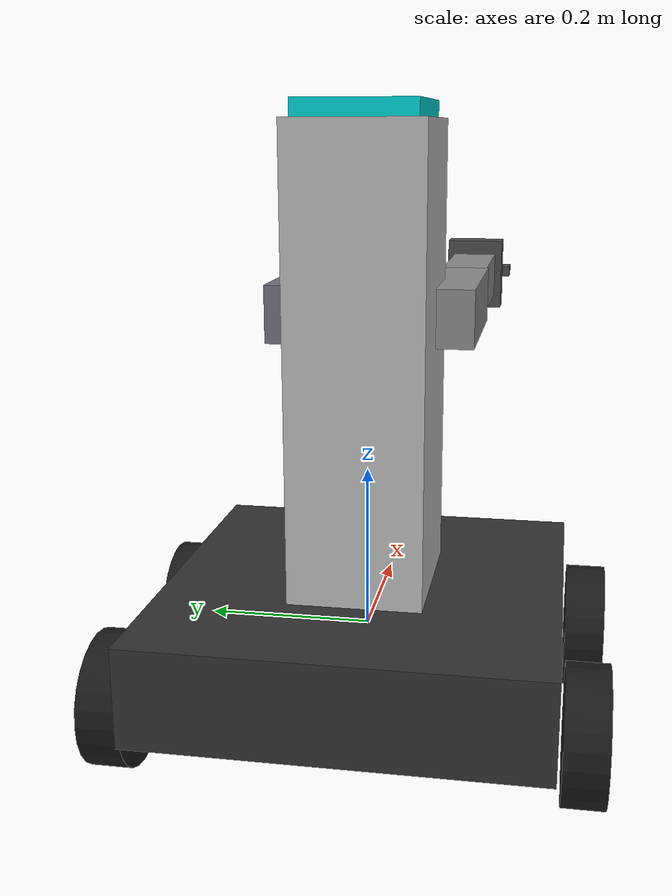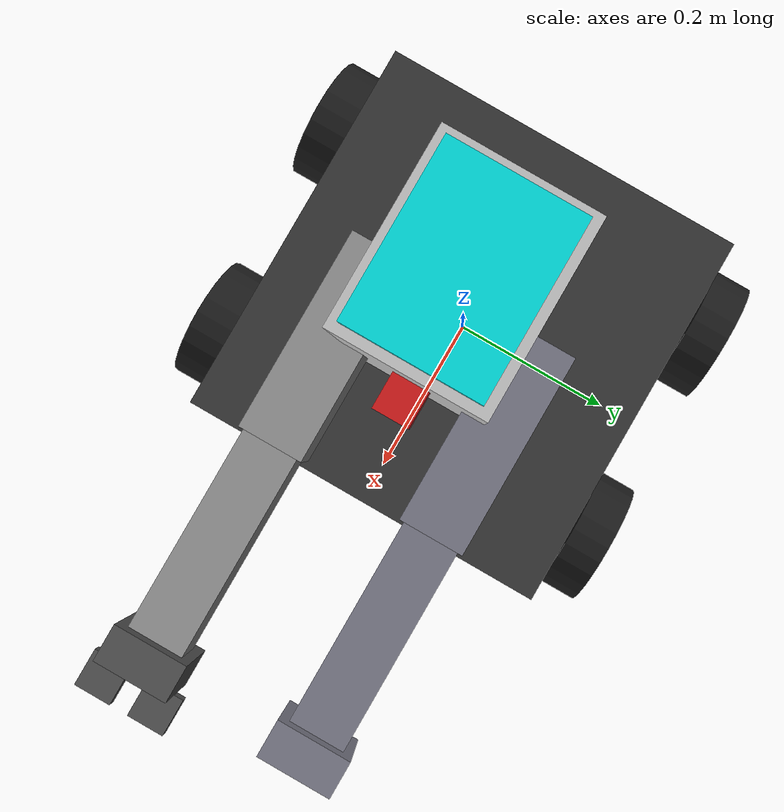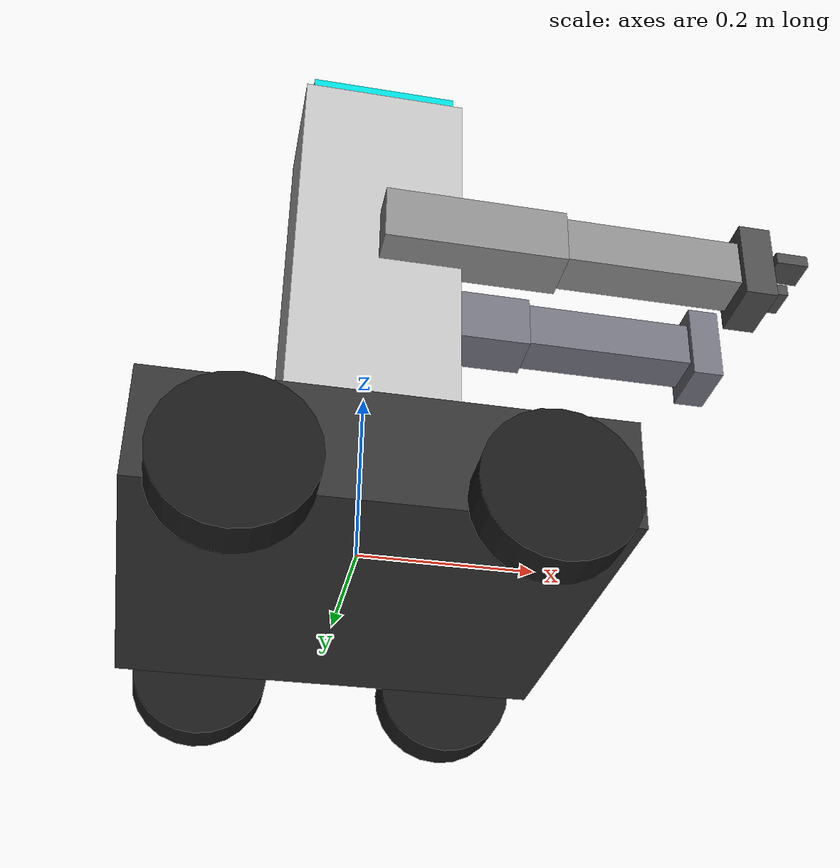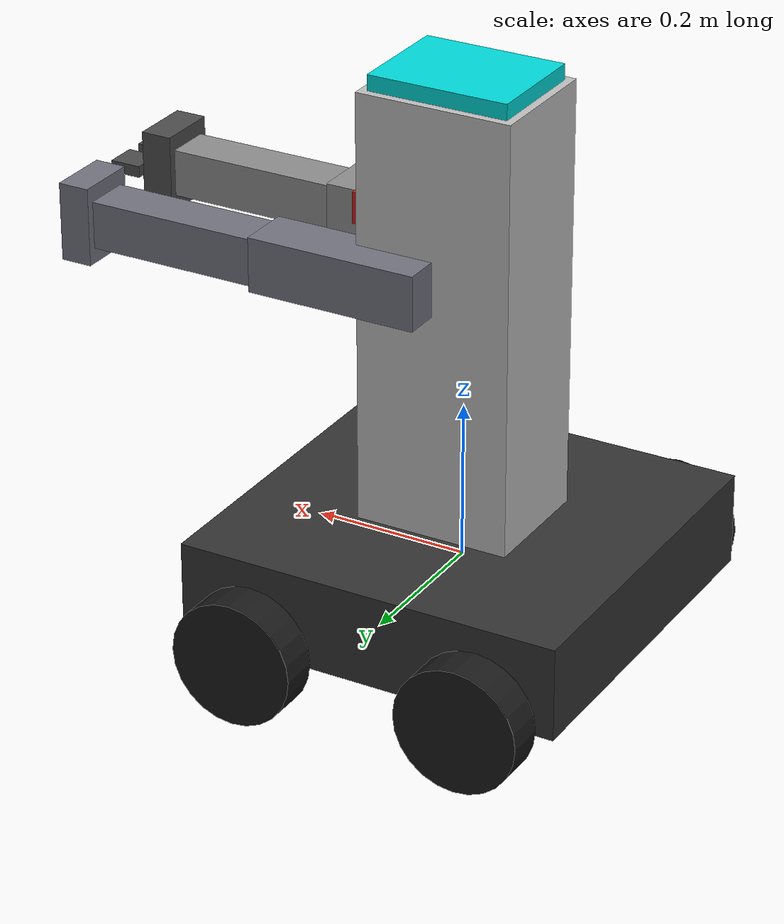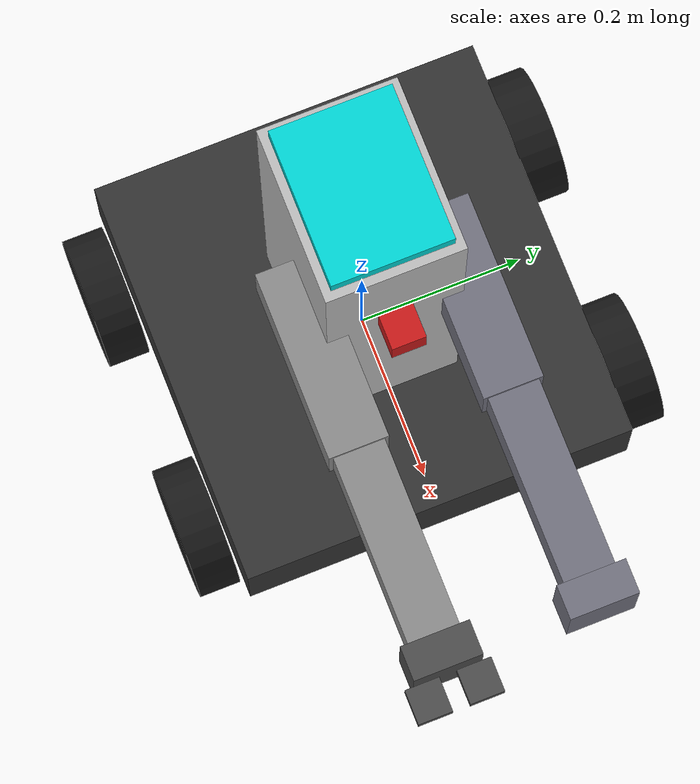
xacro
<?xml version="1.0"?>
<robot xmlns:xacro="http://www.ros.org/wiki/xacro" name="tidybot">

  <xacro:macro name="inertia_box" params="m x y z">
    <inertial>
      <mass value="${m}"/>
      <inertia
        ixx="${m/12.0 * (y*y + z*z)}"
        iyy="${m/12.0 * (x*x + z*z)}"
        izz="${m/12.0 * (x*x + y*y)}"
        ixy="0" ixz="0" iyz="0"/>
    </inertial>
  </xacro:macro>

  <xacro:macro name="inertia_cylinder" params="m r h">
    <inertial>
      <mass value="${m}"/>
      <inertia
        ixx="${m/12.0 * (3*r*r + h*h)}"
        iyy="${m/12.0 * (3*r*r + h*h)}"
        izz="${m/2.0  * r*r}"
        ixy="0" ixz="0" iyz="0"/>
    </inertial>
  </xacro:macro>

  <!-- ═══════════════════════════════════════════════════════════════
       ROBOT DIMENSIONS
  ═══════════════════════════════════════════════════════════════ -->

  <!-- Base chassis -->
  <xacro:property name="base_x"    value="0.50"/>
  <xacro:property name="base_y"    value="0.48"/>
  <xacro:property name="base_z"    value="0.12"/>
  <xacro:property name="base_mass" value="8.0"/>

  <!-- Wheels -->
  <xacro:property name="wheel_r"     value="0.08"/>
  <xacro:property name="wheel_h"     value="0.05"/>
  <xacro:property name="wheel_mass"  value="0.6"/>
  <xacro:property name="wheel_x_off" value="0.15"/>
  <xacro:property name="wheel_y_off" value="${base_y/2.0 + wheel_h/2.0 + 0.005}"/>
  <xacro:property name="wheel_z_off" value="-0.05"/>
  <xacro:property name="wheel_sep"   value="${wheel_y_off * 2.0}"/>

  <!-- Torso -->
  <xacro:property name="torso_x"    value="0.20"/>
  <xacro:property name="torso_y"    value="0.16"/>
  <xacro:property name="torso_z"    value="0.55"/>
  <xacro:property name="torso_mass" value="3.5"/>
  <!-- Torso sits on top of base_link:
       joint z = base_z/2 + torso_z/2 = 0.06 + 0.275 = 0.335 -->
  <xacro:property name="torso_joint_z" value="${base_z/2.0 + torso_z/2.0}"/>

  <!-- Arm (both sides share the same segment lengths) -->
  <xacro:property name="upper_arm_len"   value="0.22"/>
  <xacro:property name="upper_arm_w"     value="0.07"/>
  <xacro:property name="forearm_len"     value="0.22"/>
  <xacro:property name="forearm_w"       value="0.06"/>
  <xacro:property name="gripper_base_x"  value="0.10"/>
  <xacro:property name="gripper_base_y"  value="0.08"/>
  <xacro:property name="gripper_base_z"  value="0.04"/>
  <xacro:property name="finger_x"        value="0.015"/>
  <xacro:property name="finger_y"        value="0.04"/>
  <xacro:property name="finger_z"        value="0.04"/>
  <!-- Shoulder joint position in torso frame.
       rpy="0 1.5707 0" makes the child-frame Z point forward (+X world),
       so at θ=0 the arm extends horizontally forward. No ground collision at spawn. -->
  <xacro:property name="shoulder_y_off"  value="0.09"/>   <!-- side offset from torso center -->
  <xacro:property name="shoulder_z"      value="0.05"/>   <!-- height on torso -->

  <!-- ═══════════════════════════════════════════════════════════════
       MATERIALS
  ═══════════════════════════════════════════════════════════════ -->

  <material name="dark_grey">  <color rgba="0.2 0.2 0.2 1.0"/> </material>
  <material name="wheel_black"><color rgba="0.1 0.1 0.1 1.0"/> </material>
  <material name="light_grey"> <color rgba="0.75 0.75 0.75 1.0"/></material>
  <material name="led_cyan">   <color rgba="0.0 0.85 0.85 1.0"/> </material>
  <material name="camera_red"> <color rgba="0.8 0.1 0.1 1.0"/> </material>
  <material name="lidar_black"><color rgba="0.05 0.05 0.05 1.0"/></material>
  <material name="arm_grey">   <color rgba="0.55 0.55 0.55 1.0"/></material>
  <material name="arm_left">   <color rgba="0.45 0.45 0.5 1.0"/> </material>
  <material name="gripper_dark"><color rgba="0.3 0.3 0.3 1.0"/> </material>

  <link name="base_link">
    <visual>
      <geometry><box size="${base_x} ${base_y} ${base_z}"/></geometry>
      <material name="dark_grey"/>
    </visual>
    <collision>
      <geometry><box size="${base_x} ${base_y} ${base_z}"/></geometry>
    </collision>
    <xacro:inertia_box m="${base_mass}" x="${base_x}" y="${base_y}" z="${base_z}"/>
  </link>

  <xacro:macro name="wheel" params="name x_sgn y_sgn">
    <link name="${name}">
      <visual>
        <origin xyz="0 0 0" rpy="1.5707 0 0"/>
        <geometry><cylinder radius="${wheel_r}" length="${wheel_h}"/></geometry>
        <material name="wheel_black"/>
      </visual>
      <collision>
        <origin xyz="0 0 0" rpy="1.5707 0 0"/>
        <geometry><cylinder radius="${wheel_r}" length="${wheel_h}"/></geometry>
      </collision>
      <xacro:inertia_cylinder m="${wheel_mass}" r="${wheel_r}" h="${wheel_h}"/>
    </link>
    <joint name="${name}_joint" type="continuous">
      <parent link="base_link"/>
      <child  link="${name}"/>
      <origin xyz="${x_sgn * wheel_x_off} ${y_sgn * wheel_y_off} ${wheel_z_off}" rpy="0 0 0"/>
      <axis xyz="0 1 0"/>
      <dynamics damping="0.5" friction="0.2"/>
    </joint>
    <gazebo reference="${name}">
      <mu1>0.8</mu1><mu2>0.8</mu2>
      <slip1>0.02</slip1><slip2>0.0</slip2>
      <fdir1>1 0 0</fdir1>
      <kp>1e6</kp><kd>100</kd>
    </gazebo>
  </xacro:macro>

  <xacro:wheel name="front_left_wheel"  x_sgn=" 1" y_sgn=" 1"/>
  <xacro:wheel name="front_right_wheel" x_sgn=" 1" y_sgn="-1"/>
  <xacro:wheel name="rear_left_wheel"   x_sgn="-1" y_sgn=" 1"/>
  <xacro:wheel name="rear_right_wheel"  x_sgn="-1" y_sgn="-1"/>

  <gazebo>
    <plugin filename="ignition-gazebo-diff-drive-system"
            name="ignition::gazebo::systems::DiffDrive">
      <left_joint>front_left_wheel_joint</left_joint>
      <left_joint>rear_left_wheel_joint</left_joint>
      <right_joint>front_right_wheel_joint</right_joint>
      <right_joint>rear_right_wheel_joint</right_joint>
      <wheel_separation>${wheel_sep}</wheel_separation>
      <wheel_radius>${wheel_r}</wheel_radius>
      <topic>/cmd_vel</topic>
      <odom_topic>/odom</odom_topic>
      <tf_topic>/tf</tf_topic>
      <frame_id>odom</frame_id>
      <child_frame_id>base_link</child_frame_id>
      <odom_publish_frequency>20</odom_publish_frequency>
      <max_linear_velocity>0.6</max_linear_velocity>
      <max_angular_velocity>1.2</max_angular_velocity>
    </plugin>
  </gazebo>

  <gazebo>
    <plugin filename="ignition-gazebo-joint-state-publisher-system"
            name="ignition::gazebo::systems::JointStatePublisher">
      <topic>/joint_states</topic>
    </plugin>
  </gazebo>

  <!-- ═══════════════════════════════════════════════════════════════
       ── PHASE 2 CONTENT ─────────────────────────────────────────
  ═══════════════════════════════════════════════════════════════ -->

  <link name="torso_link">
    <visual>
      <geometry><box size="${torso_x} ${torso_y} ${torso_z}"/></geometry>
      <material name="light_grey"/>
    </visual>
    <collision>
      <geometry><box size="${torso_x} ${torso_y} ${torso_z}"/></geometry>
    </collision>
    <xacro:inertia_box m="${torso_mass}" x="${torso_x}" y="${torso_y}" z="${torso_z}"/>
  </link>

  <joint name="torso_joint" type="fixed">
    <parent link="base_link"/>
    <child  link="torso_link"/>
    <!-- torso_joint_z = base_z/2 + torso_z/2 = 0.06 + 0.275 = 0.335 -->
    <origin xyz="0 0 ${torso_joint_z}" rpy="0 0 0"/>
  </joint>

  <link name="face_panel_link">
    <visual>
      <geometry><box size="0.18 0.14 0.02"/></geometry>
      <material name="led_cyan"/>
    </visual>
    <!-- Collision omitted intentionally — it's purely decorative.
         A very thin collision box could catch on door frames. -->
    <xacro:inertia_box m="0.1" x="0.18" y="0.14" z="0.02"/>
  </link>

  <joint name="face_panel_joint" type="fixed">
    <parent link="torso_link"/>
    <child  link="face_panel_link"/>
    <!-- Sits on top of torso: torso_z/2 + panel_z/2 = 0.275 + 0.01 = 0.285 -->
    <origin xyz="0 0 0.285" rpy="0 0 0"/>
  </joint>

  <link name="camera_link">
    <visual>
      <geometry><box size="0.04 0.04 0.04"/></geometry>
      <material name="camera_red"/>
    </visual>
    <collision>
      <geometry><box size="0.04 0.04 0.04"/></geometry>
    </collision>
    <xacro:inertia_box m="0.05" x="0.04" y="0.04" z="0.04"/>
  </link>

  <joint name="camera_joint" type="fixed">
    <parent link="torso_link"/>
    <child  link="camera_link"/>
    <!-- Front face of torso (+X), mid-height (+z=0.10 in torso frame) -->
    <origin xyz="0.12 0 0.10" rpy="0 0 0"/>
  </joint>

  <gazebo reference="camera_link">
    <sensor name="front_camera" type="camera">
      <!-- The topic name Ignition publishes images on.
           Leading "/" makes it absolute (not namespaced to the model). -->
      <topic>/camera/image_raw</topic>
      <update_rate>15</update_rate>
      <camera name="front_camera">
        <!-- horizontal_fov in radians. 1.047 rad = 60 degrees.
             Wide FOV helps with navigation obstacle detection. -->
        <horizontal_fov>1.0472</horizontal_fov>
        <image>
          <!-- Low resolution for performance. Navigation doesn't need 1080p. -->
          <width>320</width>
          <height>240</height>
          <format>R8G8B8</format>
        </image>
        <clip>
          <!-- near: objects closer than 5cm are clipped (prevents z-fighting) -->
          <!-- far: objects further than 15m are not rendered -->
          <near>0.05</near>
          <far>15.0</far>
        </clip>
        <noise>
          <type>gaussian</type>
          <mean>0.0</mean>
          <stddev>0.007</stddev>
        </noise>
      </camera>
      <always_on>true</always_on>
      <visualize>false</visualize>
    </sensor>
  </gazebo>

  <link name="lidar_link">
    <visual>
      <origin xyz="0 0 0" rpy="0 0 0"/>
      <geometry><cylinder radius="0.05" length="0.05"/></geometry>
      <material name="lidar_black"/>
    </visual>
    <collision>
      <geometry><cylinder radius="0.05" length="0.05"/></geometry>
    </collision>
    <xacro:inertia_cylinder m="0.15" r="0.05" h="0.05"/>
  </link>

  <joint name="lidar_joint" type="fixed">
    <parent link="torso_link"/>
    <child  link="lidar_link"/>
    <!-- Near top of torso, centered -->
    <origin xyz="0 0 0.24" rpy="0 0 0"/>
  </joint>

  <gazebo reference="lidar_link">
    <sensor name="lidar" type="lidar">
      <topic>/scan</topic>
      <update_rate>10</update_rate>
      <lidar>
        <scan>
          <horizontal>
            <!-- 360 samples = one ray per degree. Good resolution
                 without excessive computational load. -->
            <samples>360</samples>
            <resolution>1</resolution>
            <min_angle>-3.14159</min_angle>
            <max_angle>3.14159</max_angle>
          </horizontal>
        </scan>
        <range>
          <min>0.12</min>   <!-- min: avoids detecting own chassis -->
          <max>8.0</max>    <!-- max: covers the home's longest dimension -->
          <resolution>0.01</resolution>
        </range>
        <noise>
          <type>gaussian</type>
          <mean>0.0</mean>
          <stddev>0.01</stddev>
        </noise>
      </lidar>
      <always_on>true</always_on>
      <!-- visualize: true shows the LiDAR rays in Gazebo GUI (useful for debugging) -->
      <visualize>true</visualize>
    </sensor>
  </gazebo>

  <!-- Shoulder link (upper arm segment) -->
  <link name="right_shoulder_link">
    <visual>
      <!-- Arm extends along child Z. At θ=0 this is the +X world direction.
           The visual center is at half-length along the arm. -->
      <origin xyz="0 0 ${upper_arm_len/2.0}" rpy="0 0 0"/>
      <geometry><box size="${upper_arm_w} ${upper_arm_w} ${upper_arm_len}"/></geometry>
      <material name="arm_grey"/>
    </visual>
    <collision>
      <origin xyz="0 0 ${upper_arm_len/2.0}" rpy="0 0 0"/>
      <geometry><box size="${upper_arm_w} ${upper_arm_w} ${upper_arm_len}"/></geometry>
    </collision>
    <xacro:inertia_box m="0.8" x="${upper_arm_w}" y="${upper_arm_w}" z="${upper_arm_len}"/>
  </link>

  <!-- Shoulder joint: mounted on right side (-Y) of torso.
       rpy="0 1.5707 0": rotates child frame so child-Z = parent-X (forward).
       This makes the zero position "arm horizontal forward". -->
  <joint name="right_shoulder_joint" type="revolute">
    <parent link="torso_link"/>
    <child  link="right_shoulder_link"/>
    <origin xyz="0 -${shoulder_y_off} ${shoulder_z}" rpy="0 1.5707 0"/>
    <!-- Y-axis: positive rotation swings the arm downward (toward floor) -->
    <axis xyz="0 1 0"/>
    <limit lower="-1.57" upper="2.00" effort="200" velocity="2.0"/>
    <dynamics damping="1.0" friction="0.3"/>
  </joint>

  <!-- Forearm link -->
  <link name="right_forearm_link">
    <visual>
      <origin xyz="0 0 ${forearm_len/2.0}" rpy="0 0 0"/>
      <geometry><box size="${forearm_w} ${forearm_w} ${forearm_len}"/></geometry>
      <material name="arm_grey"/>
    </visual>
    <collision>
      <origin xyz="0 0 ${forearm_len/2.0}" rpy="0 0 0"/>
      <geometry><box size="${forearm_w} ${forearm_w} ${forearm_len}"/></geometry>
    </collision>
    <xacro:inertia_box m="0.5" x="${forearm_w}" y="${forearm_w}" z="${forearm_len}"/>
  </link>

  <!-- Elbow joint: at the end of the upper arm segment.
       xyz="0 0 upper_arm_len" places it at the tip of the shoulder link. -->
  <joint name="right_elbow_joint" type="revolute">
    <parent link="right_shoulder_link"/>
    <child  link="right_forearm_link"/>
    <origin xyz="0 0 ${upper_arm_len}" rpy="0 0 0"/>
    <axis xyz="0 1 0"/>
    <limit lower="-2.50" upper="0.50" effort="150" velocity="2.5"/>
    <dynamics damping="0.8" friction="0.2"/>
  </joint>

  <!-- Gripper base link (wrist segment) -->
  <link name="right_gripper_base">
    <visual>
      <!-- Flat box: wide in X and Y, thin in Z — the palm of the gripper -->
      <origin xyz="0 0 ${gripper_base_z/2.0}" rpy="0 0 0"/>
      <geometry>
        <box size="${gripper_base_x} ${gripper_base_y} ${gripper_base_z}"/>
      </geometry>
      <material name="gripper_dark"/>
    </visual>
    <collision>
      <origin xyz="0 0 ${gripper_base_z/2.0}" rpy="0 0 0"/>
      <geometry>
        <box size="${gripper_base_x} ${gripper_base_y} ${gripper_base_z}"/>
      </geometry>
    </collision>
    <xacro:inertia_box m="0.2" x="${gripper_base_x}" y="${gripper_base_y}" z="${gripper_base_z}"/>
  </link>

  <!-- Wrist joint: at the end of the forearm.
       Axis Z: rotation spins the gripper orientation (roll of the end-effector).
       This lets the robot adjust grip angle when approaching objects. -->
  <joint name="right_wrist_joint" type="revolute">
    <parent link="right_forearm_link"/>
    <child  link="right_gripper_base"/>
    <origin xyz="0 0 ${forearm_len}" rpy="0 0 0"/>
    <axis xyz="0 0 1"/>
    <limit lower="-1.57" upper="1.57" effort="50" velocity="3.0"/>
    <dynamics damping="0.5" friction="0.1"/>
  </joint>

  <link name="right_gripper_left_finger">
    <visual>
      <geometry><box size="${finger_x} ${finger_y} ${finger_z}"/></geometry>
      <material name="gripper_dark"/>
    </visual>
    <collision>
      <geometry><box size="${finger_x} ${finger_y} ${finger_z}"/></geometry>
      <surface>
        <friction><ode><mu>1.2</mu><mu2>1.2</mu2></ode></friction>
      </surface>
    </collision>
    <xacro:inertia_box m="0.05" x="${finger_x}" y="${finger_y}" z="${finger_z}"/>
  </link>

  <!-- Left finger slides in +Y direction (outward from center) to open -->
  <joint name="right_gripper_left_joint" type="prismatic">
    <parent link="right_gripper_base"/>
    <child  link="right_gripper_left_finger"/>
    <!-- Start at y=+0.03 (center of finger already offset from center) -->
    <origin xyz="0 0.03 ${gripper_base_z + finger_z/2.0}" rpy="0 0 0"/>
    <axis xyz="0 1 0"/>
    <limit lower="0.0" upper="0.04" effort="20" velocity="0.1"/>
    <dynamics damping="0.5" friction="0.1"/>
  </joint>

  <link name="right_gripper_right_finger">
    <visual>
      <geometry><box size="${finger_x} ${finger_y} ${finger_z}"/></geometry>
      <material name="gripper_dark"/>
    </visual>
    <collision>
      <geometry><box size="${finger_x} ${finger_y} ${finger_z}"/></geometry>
      <surface>
        <friction><ode><mu>1.2</mu><mu2>1.2</mu2></ode></friction>
      </surface>
    </collision>
    <xacro:inertia_box m="0.05" x="${finger_x}" y="${finger_y}" z="${finger_z}"/>
  </link>

  <!-- Right finger slides in -Y direction (opposite to left) to open -->
  <joint name="right_gripper_right_joint" type="prismatic">
    <parent link="right_gripper_base"/>
    <child  link="right_gripper_right_finger"/>
    <origin xyz="0 -0.03 ${gripper_base_z + finger_z/2.0}" rpy="0 0 0"/>
    <axis xyz="0 -1 0"/>
    <limit lower="0.0" upper="0.04" effort="20" velocity="0.1"/>
    <dynamics damping="0.5" friction="0.1"/>
  </joint>

  <gazebo>
    <plugin filename="ignition-gazebo-joint-position-controller-system"
            name="ignition::gazebo::systems::JointPositionController">
      <joint_name>right_shoulder_joint</joint_name>
      <topic>/arm/shoulder_cmd</topic>
      <p_gain>80</p_gain><i_gain>0.5</i_gain><d_gain>8</d_gain>
      <i_max>50</i_max><i_min>-50</i_min>
      <cmd_max>200</cmd_max><cmd_min>-200</cmd_min>
    </plugin>
  </gazebo>

  <gazebo>
    <plugin filename="ignition-gazebo-joint-position-controller-system"
            name="ignition::gazebo::systems::JointPositionController">
      <joint_name>right_elbow_joint</joint_name>
      <topic>/arm/elbow_cmd</topic>
      <p_gain>60</p_gain><i_gain>0.3</i_gain><d_gain>6</d_gain>
      <i_max>40</i_max><i_min>-40</i_min>
      <cmd_max>150</cmd_max><cmd_min>-150</cmd_min>
    </plugin>
  </gazebo>

  <gazebo>
    <plugin filename="ignition-gazebo-joint-position-controller-system"
            name="ignition::gazebo::systems::JointPositionController">
      <joint_name>right_wrist_joint</joint_name>
      <topic>/arm/wrist_cmd</topic>
      <p_gain>30</p_gain><i_gain>0.2</i_gain><d_gain>3</d_gain>
      <i_max>20</i_max><i_min>-20</i_min>
      <cmd_max>50</cmd_max><cmd_min>-50</cmd_min>
    </plugin>
  </gazebo>

  <gazebo>
    <plugin filename="ignition-gazebo-joint-position-controller-system"
            name="ignition::gazebo::systems::JointPositionController">
      <joint_name>right_gripper_left_joint</joint_name>
      <topic>/arm/gripper_cmd</topic>
      <p_gain>40</p_gain><i_gain>0.1</i_gain><d_gain>2</d_gain>
      <i_max>10</i_max><i_min>-10</i_min>
      <cmd_max>20</cmd_max><cmd_min>-20</cmd_min>
    </plugin>
  </gazebo>

  <gazebo>
    <plugin filename="ignition-gazebo-joint-position-controller-system"
            name="ignition::gazebo::systems::JointPositionController">
      <joint_name>right_gripper_right_joint</joint_name>
      <topic>/arm/gripper_cmd</topic>   <!-- same topic as left finger -->
      <p_gain>40</p_gain><i_gain>0.1</i_gain><d_gain>2</d_gain>
      <i_max>10</i_max><i_min>-10</i_min>
      <cmd_max>20</cmd_max><cmd_min>-20</cmd_min>
    </plugin>
  </gazebo>

  <link name="left_shoulder_link">
    <visual>
      <origin xyz="0 0 ${upper_arm_len/2.0}" rpy="0 0 0"/>
      <geometry><box size="${upper_arm_w} ${upper_arm_w} ${upper_arm_len}"/></geometry>
      <material name="arm_left"/>
    </visual>
    <collision>
      <origin xyz="0 0 ${upper_arm_len/2.0}" rpy="0 0 0"/>
      <geometry><box size="${upper_arm_w} ${upper_arm_w} ${upper_arm_len}"/></geometry>
    </collision>
    <xacro:inertia_box m="0.8" x="${upper_arm_w}" y="${upper_arm_w}" z="${upper_arm_len}"/>
  </link>

  <!-- Opposite side: y = +shoulder_y_off. Same rpy for symmetric appearance. -->
  <joint name="left_shoulder_joint" type="fixed">
    <parent link="torso_link"/>
    <child  link="left_shoulder_link"/>
    <origin xyz="0 ${shoulder_y_off} ${shoulder_z}" rpy="0 1.5707 0"/>
  </joint>

  <link name="left_forearm_link">
    <visual>
      <origin xyz="0 0 ${forearm_len/2.0}" rpy="0 0 0"/>
      <geometry><box size="${forearm_w} ${forearm_w} ${forearm_len}"/></geometry>
      <material name="arm_left"/>
    </visual>
    <collision>
      <origin xyz="0 0 ${forearm_len/2.0}" rpy="0 0 0"/>
      <geometry><box size="${forearm_w} ${forearm_w} ${forearm_len}"/></geometry>
    </collision>
    <xacro:inertia_box m="0.5" x="${forearm_w}" y="${forearm_w}" z="${forearm_len}"/>
  </link>

  <joint name="left_elbow_joint" type="fixed">
    <parent link="left_shoulder_link"/>
    <child  link="left_forearm_link"/>
    <origin xyz="0 0 ${upper_arm_len}" rpy="0 0 0"/>
  </joint>

  <link name="left_gripper_base">
    <visual>
      <origin xyz="0 0 ${gripper_base_z/2.0}" rpy="0 0 0"/>
      <geometry><box size="${gripper_base_x} ${gripper_base_y} ${gripper_base_z}"/></geometry>
      <material name="arm_left"/>
    </visual>
    <collision>
      <origin xyz="0 0 ${gripper_base_z/2.0}" rpy="0 0 0"/>
      <geometry><box size="${gripper_base_x} ${gripper_base_y} ${gripper_base_z}"/></geometry>
    </collision>
    <xacro:inertia_box m="0.2" x="${gripper_base_x}" y="${gripper_base_y}" z="${gripper_base_z}"/>
  </link>

  <joint name="left_wrist_joint" type="fixed">
    <parent link="left_forearm_link"/>
    <child  link="left_gripper_base"/>
    <origin xyz="0 0 ${forearm_len}" rpy="0 0 0"/>
  </joint>

</robot>
